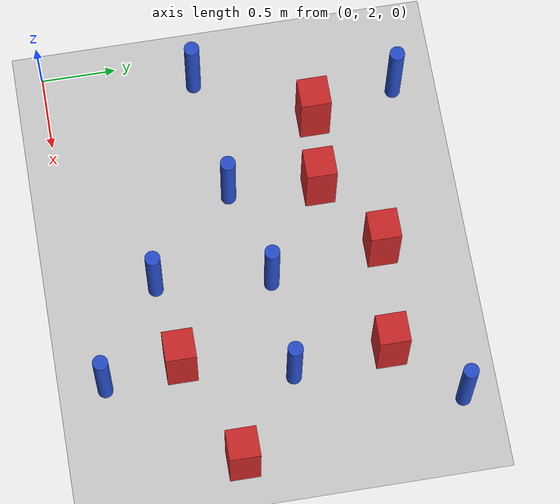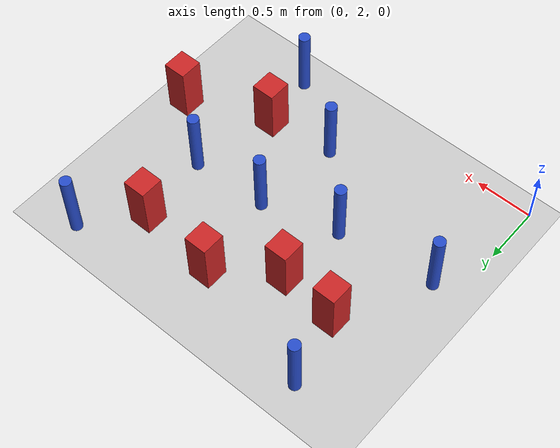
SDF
<sdf version="1.6">
 <world name="default">
  <model name="ground_plane">
   <static>1</static>
   <link name="link">
    <collision name="collision">
     <geometry><plane><normal>0 0 1</normal><size>100 100</size></plane></geometry>
     <surface><friction><ode><mu>100</mu><mu2>50</mu2></ode></friction></surface>
    </collision>
    <visual name="visual">
     <cast_shadows>0</cast_shadows>
     <geometry><plane><normal>0 0 1</normal><size>100 100</size></plane></geometry>
     <material>
      <ambient>1.0 1.0 1.0 1.0</ambient>
      <diffuse>0.8 0.8 0.8 1.0</diffuse>
      <specular>0.01 0.01 0.01 1.000000</specular>
     </material>
    </visual>
   </link>
  </model>
  <model name="pole_obstacle26">
   <static>true</static>
   <pose>1.04624911223 3.11739317264 -9.47619616065e-06 5.49618799737e-07 2.36310414062e-07 -1.55090534798e-07</pose>
   <link name="link">
    <pose>0 0 0.3 0 -0 0</pose>
    <inertial>
     <mass>1</mass>
     <inertia><ixx>0.145833</ixx><ixy>0</ixy><ixz>0</ixz><iyy>0.145833</iyy><iyz>0</iyz><izz>0.125</izz></inertia>
    </inertial>
    <collision name="collision">
     <geometry><cylinder><radius>0.05</radius><length>.6</length></cylinder></geometry>
    </collision>
    <visual name="visual">
     <geometry><cylinder><radius>0.05</radius><length>.6</length></cylinder></geometry>
     <material>
      <script><name>Gazebo/Blue</name><uri>file://media/materials/scripts/gazebo.material</uri></script>
     </material>
    </visual>
   </link>
  </model>
  <model name="square_post_obstacle59">
   <static>true</static>
   <pose>2.28770426226 3.97748539182 -6.11067671241e-07 -5.50515727128e-06 -8.79689657224e-07 2.37013304536e-05</pose>
   <link name="link">
    <pose>0 0 0.25 0 -0 0</pose>
    <inertial>
     <mass>100</mass>
     <inertia>
      <ixx>0.166667</ixx>
      <ixy>0</ixy>
      <ixz>0</ixz>
      <iyy>0.166667</iyy>
      <iyz>0</iyz>
      <izz>0.166667</izz>
     </inertia>
    </inertial>
    <collision name="collision"><geometry><box><size>.2 .2 .5</size></box></geometry></collision>
    <visual name="visual">
     <geometry><box><size>.2 .2 .5</size></box></geometry>
     <material>
      <script><name>Gazebo/Red</name><uri>file://media/materials/scripts/gazebo.material</uri></script>
     </material>
    </visual>
   </link>
  </model>
  <model name="square_post_obstacle64">
   <static>true</static>
   <pose>2.87716898346 2.91878968591 -6.11067671241e-07 -5.50515727128e-06 -8.79689657224e-07 2.37013304536e-05</pose>
   <link name="link">
    <pose>0 0 0.25 0 -0 0</pose>
    <inertial>
     <mass>100</mass>
     <inertia>
      <ixx>0.166667</ixx>
      <ixy>0</ixy>
      <ixz>0</ixz>
      <iyy>0.166667</iyy>
      <iyz>0</iyz>
      <izz>0.166667</izz>
     </inertia>
    </inertial>
    <collision name="collision"><geometry><box><size>.2 .2 .5</size></box></geometry></collision>
    <visual name="visual">
     <geometry><box><size>.2 .2 .5</size></box></geometry>
     <material>
      <script><name>Gazebo/Red</name><uri>file://media/materials/scripts/gazebo.material</uri></script>
     </material>
    </visual>
   </link>
  </model>
  <model name="square_post_obstacle66">
   <static>true</static>
   <pose>0.594225724342 3.76275228831 -6.11067671241e-07 -5.50515727128e-06 -8.79689657224e-07 2.37013304536e-05</pose>
   <link name="link">
    <pose>0 0 0.25 0 -0 0</pose>
    <inertial>
     <mass>100</mass>
     <inertia>
      <ixx>0.166667</ixx>
      <ixy>0</ixy>
      <ixz>0</ixz>
      <iyy>0.166667</iyy>
      <iyz>0</iyz>
      <izz>0.166667</izz>
     </inertia>
    </inertial>
    <collision name="collision"><geometry><box><size>.2 .2 .5</size></box></geometry></collision>
    <visual name="visual">
     <geometry><box><size>.2 .2 .5</size></box></geometry>
     <material>
      <script><name>Gazebo/Red</name><uri>file://media/materials/scripts/gazebo.material</uri></script>
     </material>
    </visual>
   </link>
  </model>
  <model name="pole_obstacle65">
   <static>true</static>
   <pose>1.69548008049 3.30099055279 -9.47619616065e-06 5.49618799737e-07 2.36310414062e-07 -1.55090534798e-07</pose>
   <link name="link">
    <pose>0 0 0.3 0 -0 0</pose>
    <inertial>
     <mass>1</mass>
     <inertia><ixx>0.145833</ixx><ixy>0</ixy><ixz>0</ixz><iyy>0.145833</iyy><iyz>0</iyz><izz>0.125</izz></inertia>
    </inertial>
    <collision name="collision">
     <geometry><cylinder><radius>0.05</radius><length>.6</length></cylinder></geometry>
    </collision>
    <visual name="visual">
     <geometry><cylinder><radius>0.05</radius><length>.6</length></cylinder></geometry>
     <material>
      <script><name>Gazebo/Blue</name><uri>file://media/materials/scripts/gazebo.material</uri></script>
     </material>
    </visual>
   </link>
  </model>
  <model name="pole_obstacle113">
   <static>true</static>
   <pose>0.205688937744 3.01035151159 -9.4761961606e-06 5.49618799729e-07 2.36310413995e-07 -1.55090534826e-07</pose>
   <link name="link">
    <pose>0 0 0.3 0 -0 0</pose>
    <inertial>
     <mass>1</mass>
     <inertia><ixx>0.145833</ixx><ixy>0</ixy><ixz>0</ixz><iyy>0.145833</iyy><iyz>0</iyz><izz>0.125</izz></inertia>
    </inertial>
    <collision name="collision">
     <geometry><cylinder><radius>0.05</radius><length>.6</length></cylinder></geometry>
    </collision>
    <visual name="visual">
     <geometry><cylinder><radius>0.05</radius><length>.6</length></cylinder></geometry>
     <material>
      <script><name>Gazebo/Blue</name><uri>file://media/materials/scripts/gazebo.material</uri></script>
     </material>
    </visual>
   </link>
  </model>
  <model name="pole_obstacle151">
   <static>true</static>
   <pose>2.67364805422 4.396603812 -9.47619616065e-06 5.49618799738e-07 2.3631041406e-07 -1.55090534801e-07</pose>
   <link name="link">
    <pose>0 0 0.3 0 -0 0</pose>
    <inertial>
     <mass>1</mass>
     <inertia><ixx>0.145833</ixx><ixy>0</ixy><ixz>0</ixz><iyy>0.145833</iyy><iyz>0</iyz><izz>0.125</izz></inertia>
    </inertial>
    <collision name="collision">
     <geometry><cylinder><radius>0.05</radius><length>.6</length></cylinder></geometry>
    </collision>
    <visual name="visual">
     <geometry><cylinder><radius>0.05</radius><length>.6</length></cylinder></geometry>
     <material>
      <script><name>Gazebo/Blue</name><uri>file://media/materials/scripts/gazebo.material</uri></script>
     </material>
    </visual>
   </link>
  </model>
  <model name="pole_obstacle160">
   <static>true</static>
   <pose>2.24860926116 2.11729141332 -9.47619616065e-06 5.49618799737e-07 2.36310414051e-07 -1.55090534807e-07</pose>
   <link name="link">
    <pose>0 0 0.3 0 -0 0</pose>
    <inertial>
     <mass>1</mass>
     <inertia><ixx>0.145833</ixx><ixy>0</ixy><ixz>0</ixz><iyy>0.145833</iyy><iyz>0</iyz><izz>0.125</izz></inertia>
    </inertial>
    <collision name="collision">
     <geometry><cylinder><radius>0.05</radius><length>.6</length></cylinder></geometry>
    </collision>
    <visual name="visual">
     <geometry><cylinder><radius>0.05</radius><length>.6</length></cylinder></geometry>
     <material>
      <script><name>Gazebo/Blue</name><uri>file://media/materials/scripts/gazebo.material</uri></script>
     </material>
    </visual>
   </link>
  </model>
  <model name="pole_obstacle163">
   <static>true</static>
   <pose>2.35426142133 3.33801655337 -9.47619616065e-06 5.49618799737e-07 2.36310414051e-07 -1.55090534807e-07</pose>
   <link name="link">
    <pose>0 0 0.3 0 -0 0</pose>
    <inertial>
     <mass>1</mass>
     <inertia><ixx>0.145833</ixx><ixy>0</ixy><ixz>0</ixz><iyy>0.145833</iyy><iyz>0</iyz><izz>0.125</izz></inertia>
    </inertial>
    <collision name="collision">
     <geometry><cylinder><radius>0.05</radius><length>.6</length></cylinder></geometry>
    </collision>
    <visual name="visual">
     <geometry><cylinder><radius>0.05</radius><length>.6</length></cylinder></geometry>
     <material>
      <script><name>Gazebo/Blue</name><uri>file://media/materials/scripts/gazebo.material</uri></script>
     </material>
    </visual>
   </link>
  </model>
  <model name="square_post_obstacle176">
   <static>true</static>
   <pose>1.09284360751 3.71484733262 -6.11067671241e-07 -5.50515727128e-06 -8.79689657224e-07 2.37013304536e-05</pose>
   <link name="link">
    <pose>0 0 0.25 0 -0 0</pose>
    <inertial>
     <mass>100</mass>
     <inertia>
      <ixx>0.166667</ixx>
      <ixy>0</ixy>
      <ixz>0</ixz>
      <iyy>0.166667</iyy>
      <iyz>0</iyz>
      <izz>0.166667</izz>
     </inertia>
    </inertial>
    <collision name="collision"><geometry><box><size>.2 .2 .5</size></box></geometry></collision>
    <visual name="visual">
     <geometry><box><size>.2 .2 .5</size></box></geometry>
     <material>
      <script><name>Gazebo/Red</name><uri>file://media/materials/scripts/gazebo.material</uri></script>
     </material>
    </visual>
   </link>
  </model>
  <model name="pole_obstacle192">
   <static>true</static>
   <pose>1.61364626472 2.54149946869 -9.47619616065e-06 5.49618799737e-07 2.36310414062e-07 -1.55090534798e-07</pose>
   <link name="link">
    <pose>0 0 0.3 0 -0 0</pose>
    <inertial>
     <mass>1</mass>
     <inertia><ixx>0.145833</ixx><ixy>0</ixy><ixz>0</ixz><iyy>0.145833</iyy><iyz>0</iyz><izz>0.125</izz></inertia>
    </inertial>
    <collision name="collision">
     <geometry><cylinder><radius>0.05</radius><length>.6</length></cylinder></geometry>
    </collision>
    <visual name="visual">
     <geometry><cylinder><radius>0.05</radius><length>.6</length></cylinder></geometry>
     <material>
      <script><name>Gazebo/Blue</name><uri>file://media/materials/scripts/gazebo.material</uri></script>
     </material>
    </visual>
   </link>
  </model>
  <model name="square_post_obstacle193">
   <static>true</static>
   <pose>2.17738658992 2.62282818076 -6.11067671241e-07 -5.50515727128e-06 -8.79689657224e-07 2.37013304536e-05</pose>
   <link name="link">
    <pose>0 0 0.25 0 -0 0</pose>
    <inertial>
     <mass>100</mass>
     <inertia>
      <ixx>0.166667</ixx>
      <ixy>0</ixy>
      <ixz>0</ixz>
      <iyy>0.166667</iyy>
      <iyz>0</iyz>
      <izz>0.166667</izz>
     </inertia>
    </inertial>
    <collision name="collision"><geometry><box><size>.2 .2 .5</size></box></geometry></collision>
    <visual name="visual">
     <geometry><box><size>.2 .2 .5</size></box></geometry>
     <material>
      <script><name>Gazebo/Red</name><uri>file://media/materials/scripts/gazebo.material</uri></script>
     </material>
    </visual>
   </link>
  </model>
  <model name="pole_obstacle208">
   <static>true</static>
   <pose>0.457244372459 4.33834151339 -9.47619616065e-06 5.49618799737e-07 2.36310414066e-07 -1.55090534795e-07</pose>
   <link name="link">
    <pose>0 0 0.3 0 -0 0</pose>
    <inertial>
     <mass>1</mass>
     <inertia><ixx>0.145833</ixx><ixy>0</ixy><ixz>0</ixz><iyy>0.145833</iyy><iyz>0</iyz><izz>0.125</izz></inertia>
    </inertial>
    <collision name="collision">
     <geometry><cylinder><radius>0.05</radius><length>.6</length></cylinder></geometry>
    </collision>
    <visual name="visual">
     <geometry><cylinder><radius>0.05</radius><length>.6</length></cylinder></geometry>
     <material>
      <script><name>Gazebo/Blue</name><uri>file://media/materials/scripts/gazebo.material</uri></script>
     </material>
    </visual>
   </link>
  </model>
  <model name="square_post_obstacle210">
   <static>true</static>
   <pose>1.58675607103 4.04761221472 -6.11067671241e-07 -5.50515727128e-06 -8.79689657224e-07 2.37013304536e-05</pose>
   <link name="link">
    <pose>0 0 0.25 0 -0 0</pose>
    <inertial>
     <mass>100</mass>
     <inertia>
      <ixx>0.166667</ixx>
      <ixy>0</ixy>
      <ixz>0</ixz>
      <iyy>0.166667</iyy>
      <iyz>0</iyz>
      <izz>0.166667</izz>
     </inertia>
    </inertial>
    <collision name="collision"><geometry><box><size>.2 .2 .5</size></box></geometry></collision>
    <visual name="visual">
     <geometry><box><size>.2 .2 .5</size></box></geometry>
     <material>
      <script><name>Gazebo/Red</name><uri>file://media/materials/scripts/gazebo.material</uri></script>
     </material>
    </visual>
   </link>
  </model>
 </world>
</sdf>
